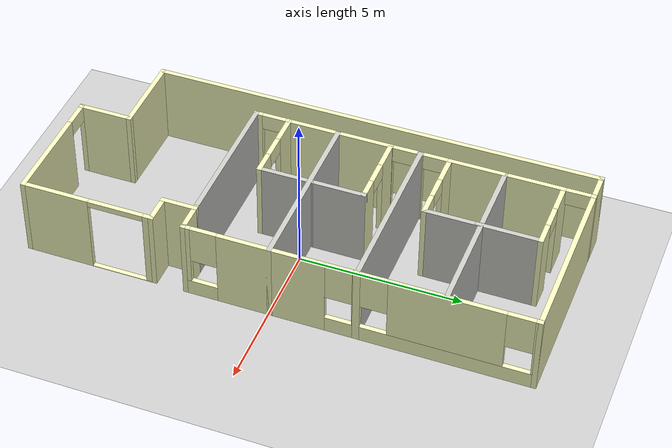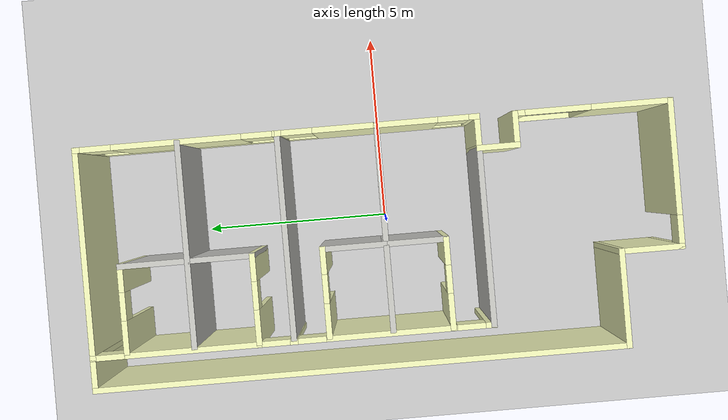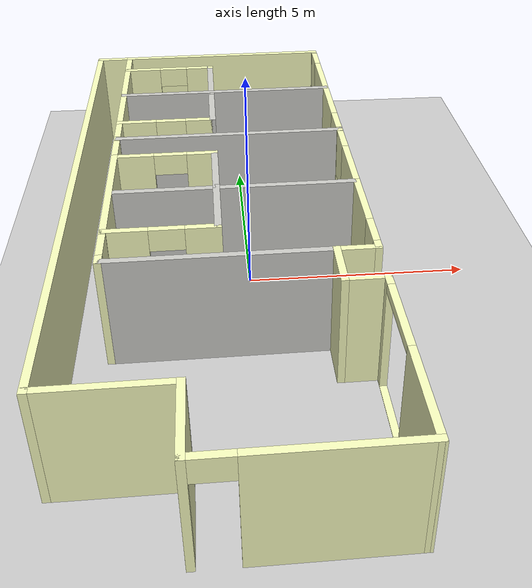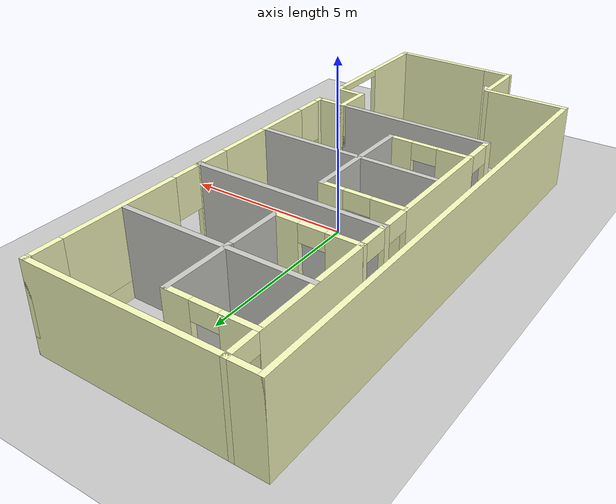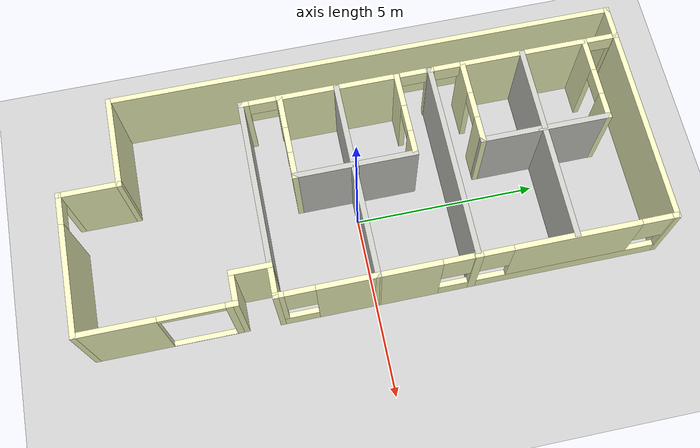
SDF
<sdf version="1.6">
 <world name="default">
  <model name="ground_plane">
   <static>1</static>
   <link name="link">
    <collision name="collision">
     <geometry><plane><normal>0 0 1</normal><size>100 100</size></plane></geometry>
     <surface>
      <contact><collide_bitmask>65535</collide_bitmask></contact>
      <friction><ode><mu>100</mu><mu2>50</mu2></ode></friction>
     </surface>
    </collision>
    <visual name="visual">
     <cast_shadows>0</cast_shadows>
     <geometry><plane><normal>0 0 1</normal><size>100 100</size></plane></geometry>
     <material>
      <script><uri>file://media/materials/scripts/gazebo.material</uri><name>Gazebo/Grey</name></script>
     </material>
    </visual>
   </link>
  </model>
  <model name="struc">
   <pose>-0.703267 0.14082 1e-06 0 -0.006238 0</pose>
   <link name="Wall_10">
    <collision name="Wall_10_Collision">
     <geometry><box><size>1.715 0.15 2.5</size></box></geometry>
     <pose>0 0 1.25 0 -0 0</pose>
    </collision>
    <visual name="Wall_10_Visual">
     <pose>0 0 1.25 0 -0 0</pose>
     <geometry><box><size>1.715 0.15 2.5</size></box></geometry>
     <material>
      <script><uri>file://media/materials/scripts/gazebo.material</uri><name>Gazebo/Grey</name></script>
      <ambient>0.980392 1 0.752941 1</ambient>
     </material>
     <meta><layer>0</layer></meta>
    </visual>
    <pose>-0.669906 -6.90644 0 0 -0 1.57083</pose>
   </link>
   <link name="Wall_14">
    <pose>1.21509 -7.68894 0 0 0 -3.4e-05</pose>
    <visual name="Wall_14_Visual_0">
     <pose>-1.88496 0 1.25 0 -0 0</pose>
     <geometry><box><size>0.150071 0.15 2.5</size></box></geometry>
     <material>
      <script><uri>file://media/materials/scripts/gazebo.material</uri><name>Gazebo/Grey</name></script>
      <ambient>0.980392 1 0.752941 1</ambient>
     </material>
     <meta><layer>0</layer></meta>
    </visual>
    <collision name="Wall_14_Collision_0">
     <geometry><box><size>0.150071 0.15 2.5</size></box></geometry>
     <pose>-1.88496 0 1.25 0 -0 0</pose>
    </collision>
    <visual name="Wall_14_Visual_1">
     <pose>0.442536 0 1.25 0 -0 0</pose>
     <geometry><box><size>3.03493 0.15 2.5</size></box></geometry>
     <material>
      <script><uri>file://media/materials/scripts/gazebo.material</uri><name>Gazebo/Grey</name></script>
      <ambient>0.980392 1 0.752941 1</ambient>
     </material>
     <meta><layer>0</layer></meta>
    </visual>
    <collision name="Wall_14_Collision_1">
     <geometry><box><size>3.03493 0.15 2.5</size></box></geometry>
     <pose>0.442536 0 1.25 0 -0 0</pose>
    </collision>
    <visual name="Wall_14_Visual_2">
     <pose>-1.44243 0 2.25 0 -0 0</pose>
     <geometry><box><size>0.735 0.15 0.5</size></box></geometry>
     <material>
      <script><uri>file://media/materials/scripts/gazebo.material</uri><name>Gazebo/Grey</name></script>
      <ambient>0.980392 1 0.752941 1</ambient>
     </material>
     <meta><layer>0</layer></meta>
    </visual>
    <collision name="Wall_14_Collision_2">
     <geometry><box><size>0.735 0.15 0.5</size></box></geometry>
     <pose>-1.44243 0 2.25 0 -0 0</pose>
    </collision>
   </link>
   <link name="Wall_16">
    <pose>3.10006 -5.684 0 0 -0 1.5708</pose>
    <visual name="Wall_16_Visual_0">
     <pose>-1.02051 0 1.25 0 -0 0</pose>
     <geometry><box><size>2.11899 0.15 2.5</size></box></geometry>
     <material>
      <script><uri>file://media/materials/scripts/gazebo.material</uri><name>Gazebo/Grey</name></script>
      <ambient>0.980392 1 0.752941 1</ambient>
     </material>
     <meta><layer>0</layer></meta>
    </visual>
    <collision name="Wall_16_Collision_0">
     <geometry><box><size>2.11899 0.15 2.5</size></box></geometry>
     <pose>-1.02051 0 1.25 0 -0 0</pose>
    </collision>
    <visual name="Wall_16_Visual_1">
     <pose>1.05949 0 0.0075 0 -0 0</pose>
     <geometry><box><size>2.04101 0.15 0.015</size></box></geometry>
     <material>
      <script><uri>file://media/materials/scripts/gazebo.material</uri><name>Gazebo/Grey</name></script>
      <ambient>0.980392 1 0.752941 1</ambient>
     </material>
     <meta><layer>0</layer></meta>
    </visual>
    <collision name="Wall_16_Collision_1">
     <geometry><box><size>2.04101 0.15 0.015</size></box></geometry>
     <pose>1.05949 0 0.0075 0 -0 0</pose>
    </collision>
    <visual name="Wall_16_Visual_2">
     <pose>1.91449 0 1.2575 0 -0 0</pose>
     <geometry><box><size>0.331011 0.15 2.485</size></box></geometry>
     <material>
      <script><uri>file://media/materials/scripts/gazebo.material</uri><name>Gazebo/Grey</name></script>
      <ambient>0.980392 1 0.752941 1</ambient>
     </material>
     <meta><layer>0</layer></meta>
    </visual>
    <collision name="Wall_16_Collision_2">
     <geometry><box><size>0.331011 0.15 2.485</size></box></geometry>
     <pose>1.91449 0 1.2575 0 -0 0</pose>
    </collision>
    <visual name="Wall_16_Visual_3">
     <pose>0.893989 0 2.4075 0 -0 0</pose>
     <geometry><box><size>1.71 0.15 0.185</size></box></geometry>
     <material>
      <script><uri>file://media/materials/scripts/gazebo.material</uri><name>Gazebo/Grey</name></script>
      <ambient>0.980392 1 0.752941 1</ambient>
     </material>
     <meta><layer>0</layer></meta>
    </visual>
    <collision name="Wall_16_Collision_3">
     <geometry><box><size>1.71 0.15 0.185</size></box></geometry>
     <pose>0.893989 0 2.4075 0 -0 0</pose>
    </collision>
   </link>
   <link name="Wall_22">
    <collision name="Wall_22_Collision">
     <geometry><box><size>0.950805 0.15 2.5</size></box></geometry>
     <pose>0 0 1.25 0 -0 0</pose>
    </collision>
    <visual name="Wall_22_Visual">
     <pose>0 0 1.25 0 -0 0</pose>
     <geometry><box><size>0.950805 0.15 2.5</size></box></geometry>
     <material>
      <script><uri>file://media/materials/scripts/gazebo.material</uri><name>Gazebo/Grey</name></script>
      <ambient>0.980392 1 0.752941 1</ambient>
     </material>
     <meta><layer>0</layer></meta>
    </visual>
    <pose>2.69966 -3.679 0 0 -0 3.14159</pose>
   </link>
   <link name="Wall_24">
    <collision name="Wall_24_Collision">
     <geometry><box><size>1.135 0.15 2.5</size></box></geometry>
     <pose>0 0 1.253 0 -0 0</pose>
    </collision>
    <visual name="Wall_24_Visual">
     <pose>0 0 1.253 0 -0 0</pose>
     <geometry><box><size>1.135 0.15 2.5</size></box></geometry>
     <material>
      <script><uri>file://media/materials/scripts/gazebo.material</uri><name>Gazebo/Grey</name></script>
      <ambient>0.980392 1 0.752941 1</ambient>
     </material>
     <meta><layer>0</layer></meta>
    </visual>
    <pose>2.29066 -3.1865 0 0 -0 1.5708</pose>
   </link>
   <link name="Wall_28">
    <collision name="Wall_28_Collision">
     <geometry><box><size>2.58426 0.15 2.5</size></box></geometry>
     <pose>0 0 1.25 0 -0 0</pose>
    </collision>
    <visual name="Wall_28_Visual">
     <pose>0 0 1.25 0 -0 0</pose>
     <geometry><box><size>2.58426 0.15 2.5</size></box></geometry>
     <material>
      <script><uri>file://media/materials/scripts/gazebo.material</uri><name>Gazebo/Grey</name></script>
      <ambient>0.980392 1 0.752941 1</ambient>
     </material>
     <meta><layer>0</layer></meta>
    </visual>
    <pose>-1.88706 -6.124 0 0 -0 3.14159</pose>
   </link>
   <link name="Wall_30">
    <collision name="Wall_30_Collision">
     <geometry><box><size>13.963 0.15 2.5</size></box></geometry>
     <pose>0 0 1.25 0 -0 0</pose>
    </collision>
    <visual name="Wall_30_Visual">
     <pose>0 0 1.25 0 -0 0</pose>
     <geometry><box><size>13.963 0.15 2.5</size></box></geometry>
     <material>
      <script><uri>file://media/materials/scripts/gazebo.material</uri><name>Gazebo/Grey</name></script>
      <ambient>0.980392 1 0.752941 1</ambient>
     </material>
     <meta><layer>0</layer></meta>
    </visual>
    <pose>-3.106 0.782499 0 0 -0 1.57079</pose>
   </link>
   <link name="Wall_32">
    <collision name="Wall_32_Collision">
     <geometry><box><size>0.98 0.15 2.5</size></box></geometry>
     <pose>0 0 1.25 0 -0 0</pose>
    </collision>
    <visual name="Wall_32_Visual">
     <pose>0 0 1.25 0 -0 0</pose>
     <geometry><box><size>0.98 0.15 2.5</size></box></geometry>
     <material>
      <script><uri>file://media/materials/scripts/gazebo.material</uri><name>Gazebo/Grey</name></script>
      <ambient>0.980392 1 0.752941 1</ambient>
     </material>
     <meta><layer>0</layer></meta>
    </visual>
    <pose>-2.69094 7.689 0 0 -0 0</pose>
   </link>
   <link name="Wall_34">
    <pose>-2.27594 2.4975 0 0 0 -1.5708</pose>
    <visual name="Wall_34_Visual_0">
     <pose>-5.18585 0 1.25 0 -0 0</pose>
     <geometry><box><size>0.161301 0.15 2.5</size></box></geometry>
     <material>
      <script><uri>file://media/materials/scripts/gazebo.material</uri><name>Gazebo/Grey</name></script>
      <ambient>0.980392 1 0.752941 1</ambient>
     </material>
     <meta><layer>0</layer></meta>
    </visual>
    <collision name="Wall_34_Collision_0">
     <geometry><box><size>0.161301 0.15 2.5</size></box></geometry>
     <pose>-5.18585 0 1.25 0 -0 0</pose>
    </collision>
    <visual name="Wall_34_Visual_1">
     <pose>-2.59577 0 1.25 0 -0 0</pose>
     <geometry><box><size>3.54886 0.15 2.5</size></box></geometry>
     <material>
      <script><uri>file://media/materials/scripts/gazebo.material</uri><name>Gazebo/Grey</name></script>
      <ambient>0.980392 1 0.752941 1</ambient>
     </material>
     <meta><layer>0</layer></meta>
    </visual>
    <collision name="Wall_34_Collision_1">
     <geometry><box><size>3.54886 0.15 2.5</size></box></geometry>
     <pose>-2.59577 0 1.25 0 -0 0</pose>
    </collision>
    <visual name="Wall_34_Visual_2">
     <pose>0.01567 0 1.25 0 -0 0</pose>
     <geometry><box><size>0.204017 0.15 2.5</size></box></geometry>
     <material>
      <script><uri>file://media/materials/scripts/gazebo.material</uri><name>Gazebo/Grey</name></script>
      <ambient>0.980392 1 0.752941 1</ambient>
     </material>
     <meta><layer>0</layer></meta>
    </visual>
    <collision name="Wall_34_Collision_2">
     <geometry><box><size>0.204017 0.15 2.5</size></box></geometry>
     <pose>0.01567 0 1.25 0 -0 0</pose>
    </collision>
    <visual name="Wall_34_Visual_3">
     <pose>2.54627 0 1.25 0 -0 0</pose>
     <geometry><box><size>3.38719 0.15 2.5</size></box></geometry>
     <material>
      <script><uri>file://media/materials/scripts/gazebo.material</uri><name>Gazebo/Grey</name></script>
      <ambient>0.980392 1 0.752941 1</ambient>
     </material>
     <meta><layer>0</layer></meta>
    </visual>
    <collision name="Wall_34_Collision_3">
     <geometry><box><size>3.38719 0.15 2.5</size></box></geometry>
     <pose>2.54627 0 1.25 0 -0 0</pose>
    </collision>
    <visual name="Wall_34_Visual_4">
     <pose>5.12069 0 1.25 0 -0 0</pose>
     <geometry><box><size>0.291637 0.15 2.5</size></box></geometry>
     <material>
      <script><uri>file://media/materials/scripts/gazebo.material</uri><name>Gazebo/Grey</name></script>
      <ambient>0.980392 1 0.752941 1</ambient>
     </material>
     <meta><layer>0</layer></meta>
    </visual>
    <collision name="Wall_34_Collision_4">
     <geometry><box><size>0.291637 0.15 2.5</size></box></geometry>
     <pose>5.12069 0 1.25 0 -0 0</pose>
    </collision>
    <visual name="Wall_34_Visual_5">
     <pose>-4.7377 0 2.25 0 -0 0</pose>
     <geometry><box><size>0.735 0.15 0.5</size></box></geometry>
     <material>
      <script><uri>file://media/materials/scripts/gazebo.material</uri><name>Gazebo/Grey</name></script>
      <ambient>0.980392 1 0.752941 1</ambient>
     </material>
     <meta><layer>0</layer></meta>
    </visual>
    <collision name="Wall_34_Collision_5">
     <geometry><box><size>0.735 0.15 0.5</size></box></geometry>
     <pose>-4.7377 0 2.25 0 -0 0</pose>
    </collision>
    <visual name="Wall_34_Visual_6">
     <pose>-0.453839 0 2.25 0 -0 0</pose>
     <geometry><box><size>0.735 0.15 0.5</size></box></geometry>
     <material>
      <script><uri>file://media/materials/scripts/gazebo.material</uri><name>Gazebo/Grey</name></script>
      <ambient>0.980392 1 0.752941 1</ambient>
     </material>
     <meta><layer>0</layer></meta>
    </visual>
    <collision name="Wall_34_Collision_6">
     <geometry><box><size>0.735 0.15 0.5</size></box></geometry>
     <pose>-0.453839 0 2.25 0 -0 0</pose>
    </collision>
    <visual name="Wall_34_Visual_7">
     <pose>0.485178 0 2.25 0 -0 0</pose>
     <geometry><box><size>0.735 0.15 0.5</size></box></geometry>
     <material>
      <script><uri>file://media/materials/scripts/gazebo.material</uri><name>Gazebo/Grey</name></script>
      <ambient>0.980392 1 0.752941 1</ambient>
     </material>
     <meta><layer>0</layer></meta>
    </visual>
    <collision name="Wall_34_Collision_7">
     <geometry><box><size>0.735 0.15 0.5</size></box></geometry>
     <pose>0.485178 0 2.25 0 -0 0</pose>
    </collision>
    <visual name="Wall_34_Visual_8">
     <pose>4.60737 0 2.25 0 -0 0</pose>
     <geometry><box><size>0.735 0.15 0.5</size></box></geometry>
     <material>
      <script><uri>file://media/materials/scripts/gazebo.material</uri><name>Gazebo/Grey</name></script>
      <ambient>0.980392 1 0.752941 1</ambient>
     </material>
     <meta><layer>0</layer></meta>
    </visual>
    <collision name="Wall_34_Collision_8">
     <geometry><box><size>0.735 0.15 0.5</size></box></geometry>
     <pose>4.60737 0 2.25 0 -0 0</pose>
    </collision>
   </link>
   <link name="Wall_36">
    <collision name="Wall_36_Collision">
     <geometry><box><size>4.663 0.15 2.5</size></box></geometry>
     <pose>0 0 1.25 0 -0 0</pose>
    </collision>
    <visual name="Wall_36_Visual">
     <pose>0 0 1.25 0 -0 0</pose>
     <geometry><box><size>4.663 0.15 2.5</size></box></geometry>
     <material>
      <script><uri>file://media/materials/scripts/gazebo.material</uri><name>Gazebo/CeilingTiled</name></script>
      <ambient>0.980392 1 0.752941 1</ambient>
     </material>
     <meta><layer>0</layer></meta>
    </visual>
    <pose>-0.019435 -2.694 0 0 -0 0</pose>
   </link>
   <link name="Wall_39">
    <collision name="Wall_39_Collision">
     <geometry><box><size>5.512 0.15 2.5</size></box></geometry>
     <pose>0 0 1.25 0 -0 0</pose>
    </collision>
    <visual name="Wall_39_Visual">
     <pose>0 0 1.25 0 -0 0</pose>
     <geometry><box><size>5.512 0.15 2.5</size></box></geometry>
     <material>
      <script><uri>file://media/materials/scripts/gazebo.material</uri><name>Gazebo/CeilingTiled</name></script>
      <ambient>0.980392 1 0.752941 1</ambient>
     </material>
     <meta><layer>0</layer></meta>
    </visual>
    <pose>0.425065 -0.094001 0 0 -0 0</pose>
   </link>
   <link name="Wall_41">
    <pose>3.10607 -1.394 0 0 0 -1.5708</pose>
    <visual name="Wall_41_Visual_0">
     <pose>-0.542032 0 1.25 0 -0 0</pose>
     <geometry><box><size>1.66593 0.15 2.5</size></box></geometry>
     <material>
      <script><uri>file://media/materials/scripts/gazebo.material</uri><name>Gazebo/Grey</name></script>
      <ambient>0.980392 1 0.752941 1</ambient>
     </material>
     <meta><layer>0</layer></meta>
    </visual>
    <collision name="Wall_41_Collision_0">
     <geometry><box><size>1.66593 0.15 2.5</size></box></geometry>
     <pose>-0.542032 0 1.25 0 -0 0</pose>
    </collision>
    <visual name="Wall_41_Visual_1">
     <pose>0.832968 0 0.25 0 -0 0</pose>
     <geometry><box><size>1.08407 0.15 0.5</size></box></geometry>
     <material>
      <script><uri>file://media/materials/scripts/gazebo.material</uri><name>Gazebo/Grey</name></script>
      <ambient>0.980392 1 0.752941 1</ambient>
     </material>
     <meta><layer>0</layer></meta>
    </visual>
    <collision name="Wall_41_Collision_1">
     <geometry><box><size>1.08407 0.15 0.5</size></box></geometry>
     <pose>0.832968 0 0.25 0 -0 0</pose>
    </collision>
    <visual name="Wall_41_Visual_2">
     <pose>1.23297 0 1.5 0 -0 0</pose>
     <geometry><box><size>0.284065 0.15 2</size></box></geometry>
     <material>
      <script><uri>file://media/materials/scripts/gazebo.material</uri><name>Gazebo/Grey</name></script>
      <ambient>0.980392 1 0.752941 1</ambient>
     </material>
     <meta><layer>0</layer></meta>
    </visual>
    <collision name="Wall_41_Collision_2">
     <geometry><box><size>0.284065 0.15 2</size></box></geometry>
     <pose>1.23297 0 1.5 0 -0 0</pose>
    </collision>
    <visual name="Wall_41_Visual_3">
     <pose>0.690935 0 1.9 0 -0 0</pose>
     <geometry><box><size>0.8 0.15 1.2</size></box></geometry>
     <material>
      <script><uri>file://media/materials/scripts/gazebo.material</uri><name>Gazebo/Grey</name></script>
      <ambient>0.980392 1 0.752941 1</ambient>
     </material>
     <meta><layer>0</layer></meta>
    </visual>
    <collision name="Wall_41_Collision_3">
     <geometry><box><size>0.8 0.15 1.2</size></box></geometry>
     <pose>0.690935 0 1.9 0 -0 0</pose>
    </collision>
   </link>
   <link name="Wall_43">
    <collision name="Wall_43_Collision">
     <geometry><box><size>1.019 0.15 2.5</size></box></geometry>
     <pose>0 0 1.25 0 -0 0</pose>
    </collision>
    <visual name="Wall_43_Visual">
     <pose>0 0 1.25 0 -0 0</pose>
     <geometry><box><size>1.019 0.15 2.5</size></box></geometry>
     <material>
      <script><uri>file://media/materials/scripts/gazebo.material</uri><name>Gazebo/Grey</name></script>
      <ambient>0.980392 1 0.752941 1</ambient>
     </material>
     <meta><layer>0</layer></meta>
    </visual>
    <pose>2.67157 -2.694 0 0 -0 0</pose>
   </link>
   <link name="Wall_45">
    <collision name="Wall_45_Collision">
     <geometry><box><size>5.512 0.15 2.5</size></box></geometry>
     <pose>0 0 1.25 0 -0 0</pose>
    </collision>
    <visual name="Wall_45_Visual">
     <pose>0 0 1.25 0 -0 0</pose>
     <geometry><box><size>5.512 0.15 2.5</size></box></geometry>
     <material>
      <script><uri>file://media/materials/scripts/gazebo.material</uri><name>Gazebo/CeilingTiled</name></script>
      <ambient>0.980392 1 0.752941 1</ambient>
     </material>
     <meta><layer>0</layer></meta>
    </visual>
    <pose>0.418065 2.479 0 0 -0 0</pose>
   </link>
   <link name="Wall_49">
    <pose>3.10607 1.184 0 0 -0 1.5708</pose>
    <visual name="Wall_49_Visual_0">
     <pose>-0.485277 0 1.25 0 -0 0</pose>
     <geometry><box><size>1.73544 0.15 2.5</size></box></geometry>
     <material>
      <script><uri>file://media/materials/scripts/gazebo.material</uri><name>Gazebo/Grey</name></script>
      <ambient>0.980392 1 0.752941 1</ambient>
     </material>
     <meta><layer>0</layer></meta>
    </visual>
    <collision name="Wall_49_Collision_0">
     <geometry><box><size>1.73544 0.15 2.5</size></box></geometry>
     <pose>-0.485277 0 1.25 0 -0 0</pose>
    </collision>
    <visual name="Wall_49_Visual_1">
     <pose>0.867722 0 0.25 0 -0 0</pose>
     <geometry><box><size>0.970553 0.15 0.5</size></box></geometry>
     <material>
      <script><uri>file://media/materials/scripts/gazebo.material</uri><name>Gazebo/Grey</name></script>
      <ambient>0.980392 1 0.752941 1</ambient>
     </material>
     <meta><layer>0</layer></meta>
    </visual>
    <collision name="Wall_49_Collision_1">
     <geometry><box><size>0.970553 0.15 0.5</size></box></geometry>
     <pose>0.867722 0 0.25 0 -0 0</pose>
    </collision>
    <visual name="Wall_49_Visual_2">
     <pose>1.26772 0 1.5 0 -0 0</pose>
     <geometry><box><size>0.170553 0.15 2</size></box></geometry>
     <material>
      <script><uri>file://media/materials/scripts/gazebo.material</uri><name>Gazebo/Grey</name></script>
      <ambient>0.980392 1 0.752941 1</ambient>
     </material>
     <meta><layer>0</layer></meta>
    </visual>
    <collision name="Wall_49_Collision_2">
     <geometry><box><size>0.170553 0.15 2</size></box></geometry>
     <pose>1.26772 0 1.5 0 -0 0</pose>
    </collision>
    <visual name="Wall_49_Visual_3">
     <pose>0.782446 0 1.9 0 -0 0</pose>
     <geometry><box><size>0.8 0.15 1.2</size></box></geometry>
     <material>
      <script><uri>file://media/materials/scripts/gazebo.material</uri><name>Gazebo/Grey</name></script>
      <ambient>0.980392 1 0.752941 1</ambient>
     </material>
     <meta><layer>0</layer></meta>
    </visual>
    <collision name="Wall_49_Collision_3">
     <geometry><box><size>0.8 0.15 1.2</size></box></geometry>
     <pose>0.782446 0 1.9 0 -0 0</pose>
    </collision>
   </link>
   <link name="Wall_53">
    <collision name="Wall_53_Collision">
     <geometry><box><size>5.491 0.15 2.5</size></box></geometry>
     <pose>0 0 1.25 0 -0 0</pose>
    </collision>
    <visual name="Wall_53_Visual">
     <pose>0 0 1.25 0 -0 0</pose>
     <geometry><box><size>5.491 0.15 2.5</size></box></geometry>
     <material>
      <script><uri>file://media/materials/scripts/gazebo.material</uri><name>Gazebo/CeilingTiled</name></script>
      <ambient>0.980392 1 0.752941 1</ambient>
     </material>
     <meta><layer>0</layer></meta>
    </visual>
    <pose>0.407566 5.052 0 0 -0 0</pose>
   </link>
   <link name="Wall_55">
    <pose>3.10607 5.0755 0 0 -0 1.5708</pose>
    <visual name="Wall_55_Visual_0">
     <pose>-2.58145 0 1.25 0 -0 0</pose>
     <geometry><box><size>0.214106 0.15 2.5</size></box></geometry>
     <material>
      <script><uri>file://media/materials/scripts/gazebo.material</uri><name>Gazebo/Grey</name></script>
      <ambient>0.980392 1 0.752941 1</ambient>
     </material>
     <meta><layer>0</layer></meta>
    </visual>
    <collision name="Wall_55_Collision_0">
     <geometry><box><size>0.214106 0.15 2.5</size></box></geometry>
     <pose>-2.58145 0 1.25 0 -0 0</pose>
    </collision>
    <visual name="Wall_55_Visual_1">
     <pose>0.107053 0 0.25 0 -0 0</pose>
     <geometry><box><size>5.16289 0.15 0.5</size></box></geometry>
     <material>
      <script><uri>file://media/materials/scripts/gazebo.material</uri><name>Gazebo/Grey</name></script>
      <ambient>0.980392 1 0.752941 1</ambient>
     </material>
     <meta><layer>0</layer></meta>
    </visual>
    <collision name="Wall_55_Collision_1">
     <geometry><box><size>5.16289 0.15 0.5</size></box></geometry>
     <pose>0.107053 0 0.25 0 -0 0</pose>
    </collision>
    <visual name="Wall_55_Visual_2">
     <pose>0.007393 0 1.5 0 -0 0</pose>
     <geometry><box><size>3.36357 0.15 2</size></box></geometry>
     <material>
      <script><uri>file://media/materials/scripts/gazebo.material</uri><name>Gazebo/Grey</name></script>
      <ambient>0.980392 1 0.752941 1</ambient>
     </material>
     <meta><layer>0</layer></meta>
    </visual>
    <collision name="Wall_55_Collision_2">
     <geometry><box><size>3.36357 0.15 2</size></box></geometry>
     <pose>0.007393 0 1.5 0 -0 0</pose>
    </collision>
    <visual name="Wall_55_Visual_3">
     <pose>2.58884 0 1.5 0 -0 0</pose>
     <geometry><box><size>0.19932 0.15 2</size></box></geometry>
     <material>
      <script><uri>file://media/materials/scripts/gazebo.material</uri><name>Gazebo/Grey</name></script>
      <ambient>0.980392 1 0.752941 1</ambient>
     </material>
     <meta><layer>0</layer></meta>
    </visual>
    <collision name="Wall_55_Collision_3">
     <geometry><box><size>0.19932 0.15 2</size></box></geometry>
     <pose>2.58884 0 1.5 0 -0 0</pose>
    </collision>
    <visual name="Wall_55_Visual_4">
     <pose>-2.07439 0 1.9 0 -0 0</pose>
     <geometry><box><size>0.8 0.15 1.2</size></box></geometry>
     <material>
      <script><uri>file://media/materials/scripts/gazebo.material</uri><name>Gazebo/Grey</name></script>
      <ambient>0.980392 1 0.752941 1</ambient>
     </material>
     <meta><layer>0</layer></meta>
    </visual>
    <collision name="Wall_55_Collision_4">
     <geometry><box><size>0.8 0.15 1.2</size></box></geometry>
     <pose>-2.07439 0 1.9 0 -0 0</pose>
    </collision>
    <visual name="Wall_55_Visual_5">
     <pose>2.08918 0 1.9 0 -0 0</pose>
     <geometry><box><size>0.8 0.15 1.2</size></box></geometry>
     <material>
      <script><uri>file://media/materials/scripts/gazebo.material</uri><name>Gazebo/Grey</name></script>
      <ambient>0.980392 1 0.752941 1</ambient>
     </material>
     <meta><layer>0</layer></meta>
    </visual>
    <collision name="Wall_55_Collision_5">
     <geometry><box><size>0.8 0.15 1.2</size></box></geometry>
     <pose>2.08918 0 1.9 0 -0 0</pose>
    </collision>
   </link>
   <link name="Wall_57">
    <collision name="Wall_57_Collision">
     <geometry><box><size>5.532 0.15 2.5</size></box></geometry>
     <pose>0 0 1.25 0 -0 0</pose>
    </collision>
    <visual name="Wall_57_Visual">
     <pose>0 0 1.25 0 -0 0</pose>
     <geometry><box><size>5.532 0.15 2.5</size></box></geometry>
     <material>
      <script><uri>file://media/materials/scripts/gazebo.material</uri><name>Gazebo/Grey</name></script>
      <ambient>0.980392 1 0.752941 1</ambient>
     </material>
     <meta><layer>0</layer></meta>
    </visual>
    <pose>0.415065 7.689 0 0 -0 0</pose>
   </link>
   <link name="Wall_59">
    <pose>-1.11694 1.557 0 0 -0 0</pose>
    <visual name="Wall_59_Visual_0">
     <pose>-0.737383 0 1.25 0 -0 0</pose>
     <geometry><box><size>0.975234 0.15 2.5</size></box></geometry>
     <material>
      <script><uri>file://media/materials/scripts/gazebo.material</uri><name>Gazebo/Grey</name></script>
      <ambient>0.980392 1 0.752941 1</ambient>
     </material>
     <meta><layer>0</layer></meta>
    </visual>
    <collision name="Wall_59_Collision_0">
     <geometry><box><size>0.975234 0.15 2.5</size></box></geometry>
     <pose>-0.737383 0 1.25 0 -0 0</pose>
    </collision>
    <visual name="Wall_59_Visual_1">
     <pose>0.864117 0 1.25 0 -0 0</pose>
     <geometry><box><size>0.721766 0.15 2.5</size></box></geometry>
     <material>
      <script><uri>file://media/materials/scripts/gazebo.material</uri><name>Gazebo/Grey</name></script>
      <ambient>0.980392 1 0.752941 1</ambient>
     </material>
     <meta><layer>0</layer></meta>
    </visual>
    <collision name="Wall_59_Collision_1">
     <geometry><box><size>0.721766 0.15 2.5</size></box></geometry>
     <pose>0.864117 0 1.25 0 -0 0</pose>
    </collision>
    <visual name="Wall_59_Visual_2">
     <pose>0.126734 0 2.25 0 -0 0</pose>
     <geometry><box><size>0.753 0.15 0.5</size></box></geometry>
     <material>
      <script><uri>file://media/materials/scripts/gazebo.material</uri><name>Gazebo/Grey</name></script>
      <ambient>0.980392 1 0.752941 1</ambient>
     </material>
     <meta><layer>0</layer></meta>
    </visual>
    <collision name="Wall_59_Collision_2">
     <geometry><box><size>0.753 0.15 0.5</size></box></geometry>
     <pose>0.126734 0 2.25 0 -0 0</pose>
    </collision>
   </link>
   <link name="Wall_61">
    <collision name="Wall_61_Collision">
     <geometry><box><size>1.75 0.15 2.5</size></box></geometry>
     <pose>0 0 1.25 0 -0 0</pose>
    </collision>
    <visual name="Wall_61_Visual">
     <pose>0 0 1.25 0 -0 0</pose>
     <geometry><box><size>1.75 0.15 2.5</size></box></geometry>
     <material>
      <script><uri>file://media/materials/scripts/gazebo.material</uri><name>Gazebo/CeilingTiled</name></script>
      <ambient>0.980392 1 0.752941 1</ambient>
     </material>
     <meta><layer>0</layer></meta>
    </visual>
    <pose>0.033065 0.756999 0 0 0 -1.5708</pose>
   </link>
   <link name="Wall_63">
    <collision name="Wall_63_Collision">
     <geometry><box><size>1.75 0.15 2.5</size></box></geometry>
     <pose>0 0 1.25 0 -0 0</pose>
    </collision>
    <visual name="Wall_63_Visual">
     <pose>0 0 1.25 0 -0 0</pose>
     <geometry><box><size>1.75 0.15 2.5</size></box></geometry>
     <material>
      <script><uri>file://media/materials/scripts/gazebo.material</uri><name>Gazebo/CeilingTiled</name></script>
      <ambient>0.980392 1 0.752941 1</ambient>
     </material>
     <meta><layer>0</layer></meta>
    </visual>
    <pose>0.033065 -0.843001 0 0 0 -1.5708</pose>
   </link>
   <link name="Wall_65">
    <pose>-1.12143 -1.643 0 0 -0 3.14159</pose>
    <visual name="Wall_65_Visual_0">
     <pose>-0.856038 0 1.25 0 -0 0</pose>
     <geometry><box><size>0.746924 0.15 2.5</size></box></geometry>
     <material>
      <script><uri>file://media/materials/scripts/gazebo.material</uri><name>Gazebo/Grey</name></script>
      <ambient>0.980392 1 0.752941 1</ambient>
     </material>
     <meta><layer>0</layer></meta>
    </visual>
    <collision name="Wall_65_Collision_0">
     <geometry><box><size>0.746924 0.15 2.5</size></box></geometry>
     <pose>-0.856038 0 1.25 0 -0 0</pose>
    </collision>
    <visual name="Wall_65_Visual_1">
     <pose>0.740962 0 1.25 0 -0 0</pose>
     <geometry><box><size>0.977076 0.15 2.5</size></box></geometry>
     <material>
      <script><uri>file://media/materials/scripts/gazebo.material</uri><name>Gazebo/Grey</name></script>
      <ambient>0.980392 1 0.752941 1</ambient>
     </material>
     <meta><layer>0</layer></meta>
    </visual>
    <collision name="Wall_65_Collision_1">
     <geometry><box><size>0.977076 0.15 2.5</size></box></geometry>
     <pose>0.740962 0 1.25 0 -0 0</pose>
    </collision>
    <visual name="Wall_65_Visual_2">
     <pose>-0.115076 0 2.25 0 -0 0</pose>
     <geometry><box><size>0.735 0.15 0.5</size></box></geometry>
     <material>
      <script><uri>file://media/materials/scripts/gazebo.material</uri><name>Gazebo/Grey</name></script>
      <ambient>0.980392 1 0.752941 1</ambient>
     </material>
     <meta><layer>0</layer></meta>
    </visual>
    <collision name="Wall_65_Collision_2">
     <geometry><box><size>0.735 0.15 0.5</size></box></geometry>
     <pose>-0.115076 0 2.25 0 -0 0</pose>
    </collision>
   </link>
   <link name="Wall_69">
    <pose>-1.11993 6.799 0 0 -0 0</pose>
    <visual name="Wall_69_Visual_0">
     <pose>-0.738165 0 1.25 0 -0 0</pose>
     <geometry><box><size>0.973669 0.15 2.5</size></box></geometry>
     <material>
      <script><uri>file://media/materials/scripts/gazebo.material</uri><name>Gazebo/Grey</name></script>
      <ambient>0.980392 1 0.752941 1</ambient>
     </material>
     <meta><layer>0</layer></meta>
    </visual>
    <collision name="Wall_69_Collision_0">
     <geometry><box><size>0.973669 0.15 2.5</size></box></geometry>
     <pose>-0.738165 0 1.25 0 -0 0</pose>
    </collision>
    <visual name="Wall_69_Visual_1">
     <pose>0.854335 0 1.25 0 -0 0</pose>
     <geometry><box><size>0.741331 0.15 2.5</size></box></geometry>
     <material>
      <script><uri>file://media/materials/scripts/gazebo.material</uri><name>Gazebo/Grey</name></script>
      <ambient>0.980392 1 0.752941 1</ambient>
     </material>
     <meta><layer>0</layer></meta>
    </visual>
    <collision name="Wall_69_Collision_1">
     <geometry><box><size>0.741331 0.15 2.5</size></box></geometry>
     <pose>0.854335 0 1.25 0 -0 0</pose>
    </collision>
    <visual name="Wall_69_Visual_2">
     <pose>0.116169 0 2.25 0 -0 0</pose>
     <geometry><box><size>0.735 0.15 0.5</size></box></geometry>
     <material>
      <script><uri>file://media/materials/scripts/gazebo.material</uri><name>Gazebo/Grey</name></script>
      <ambient>0.980392 1 0.752941 1</ambient>
     </material>
     <meta><layer>0</layer></meta>
    </visual>
    <collision name="Wall_69_Collision_2">
     <geometry><box><size>0.735 0.15 0.5</size></box></geometry>
     <pose>0.116169 0 2.25 0 -0 0</pose>
    </collision>
   </link>
   <link name="Wall_72">
    <collision name="Wall_72_Collision">
     <geometry><box><size>2 0.15 2.5</size></box></geometry>
     <pose>0 0 1.25 0 -0 0</pose>
    </collision>
    <visual name="Wall_72_Visual">
     <pose>0 0 1.25 0 -0 0</pose>
     <geometry><box><size>2 0.15 2.5</size></box></geometry>
     <material>
      <script><uri>file://media/materials/scripts/gazebo.material</uri><name>Gazebo/CeilingTiled</name></script>
      <ambient>0.980392 1 0.752941 1</ambient>
     </material>
     <meta><layer>0</layer></meta>
    </visual>
    <pose>0.030065 5.874 0 0 0 -1.5708</pose>
   </link>
   <link name="Wall_74">
    <collision name="Wall_74_Collision">
     <geometry><box><size>1.723 0.15 2.5</size></box></geometry>
     <pose>0 0 1.25 0 -0 0</pose>
    </collision>
    <visual name="Wall_74_Visual">
     <pose>0 0 1.25 0 -0 0</pose>
     <geometry><box><size>1.723 0.15 2.5</size></box></geometry>
     <material>
      <script><uri>file://media/materials/scripts/gazebo.material</uri><name>Gazebo/CeilingTiled</name></script>
      <ambient>0.980392 1 0.752941 1</ambient>
     </material>
     <meta><layer>0</layer></meta>
    </visual>
    <pose>0.030065 4.1625 0 0 0 -1.5708</pose>
   </link>
   <link name="Wall_76">
    <pose>-1.12443 3.376 0 0 -0 0</pose>
    <visual name="Wall_76_Visual_0">
     <pose>-0.740135 0 1.25 0 -0 0</pose>
     <geometry><box><size>0.978729 0.15 2.5</size></box></geometry>
     <material>
      <script><uri>file://media/materials/scripts/gazebo.material</uri><name>Gazebo/Grey</name></script>
      <ambient>0.980392 1 0.752941 1</ambient>
     </material>
     <meta><layer>0</layer></meta>
    </visual>
    <collision name="Wall_76_Collision_0">
     <geometry><box><size>0.978729 0.15 2.5</size></box></geometry>
     <pose>-0.740135 0 1.25 0 -0 0</pose>
    </collision>
    <visual name="Wall_76_Visual_1">
     <pose>0.856865 0 1.25 0 -0 0</pose>
     <geometry><box><size>0.745271 0.15 2.5</size></box></geometry>
     <material>
      <script><uri>file://media/materials/scripts/gazebo.material</uri><name>Gazebo/Grey</name></script>
      <ambient>0.980392 1 0.752941 1</ambient>
     </material>
     <meta><layer>0</layer></meta>
    </visual>
    <collision name="Wall_76_Collision_1">
     <geometry><box><size>0.745271 0.15 2.5</size></box></geometry>
     <pose>0.856865 0 1.25 0 -0 0</pose>
    </collision>
    <visual name="Wall_76_Visual_2">
     <pose>0.116729 0 2.25 0 -0 0</pose>
     <geometry><box><size>0.735 0.15 0.5</size></box></geometry>
     <material>
      <script><uri>file://media/materials/scripts/gazebo.material</uri><name>Gazebo/Grey</name></script>
      <ambient>0.980392 1 0.752941 1</ambient>
     </material>
     <meta><layer>0</layer></meta>
    </visual>
    <collision name="Wall_76_Collision_2">
     <geometry><box><size>0.735 0.15 0.5</size></box></geometry>
     <pose>0.116729 0 2.25 0 -0 0</pose>
    </collision>
   </link>
   <static>1</static>
  </model>
 </world>
</sdf>
